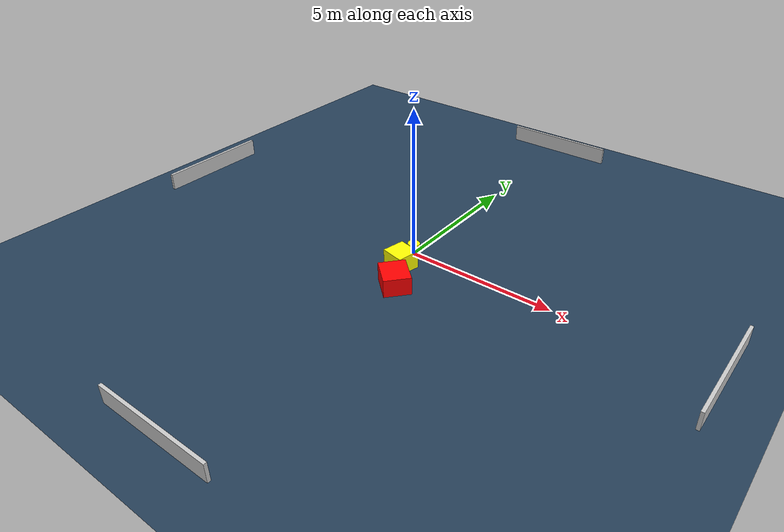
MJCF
<?xml version="1.0" ?>
<mujoco model="generated_environment">
  <option timestep="0.01" integrator="RK4" cone="elliptic"/>
  <default>
    <geom density="1"/>
  </default>
  <asset>
    <texture builtin="gradient" height="3072" name="skybox" rgb1="0.3 0.5 0.7" rgb2="0 0 0" type="skybox" width="512"/>
    <texture builtin="checker" height="300" name="groundplane" rgb1="0.2 0.3 0.4" rgb2="0.1 0.2 0.3" type="2d" width="300"/>
    <material name="groundplane" reflectance="0.2" texrepeat="5 5" texture="groundplane"/>
  </asset>
  <worldbody>
    <light dir="0 0 -1" directional="true" pos="0 0 1.5"/>
    <geom condim="3" friction="0.5 0.005 0.001" material="groundplane" name="floor" pos="0 0 0" size="0 0 0.05" type="plane"/>
    <body name="walls">
      <geom name="wall_1" condim="4" pos="-10.0 0.0 0.3" rgba="0.800000011920929 0.800000011920929 0.800000011920929 1.0" size="0.05 2.0 0.3" type="box"/>
      <geom name="wall_2" condim="4" pos="10.0 0.0 0.3" rgba="0.800000011920929 0.800000011920929 0.800000011920929 1.0" size="0.05 2.0 0.3" type="box"/>
      <geom name="wall_3" condim="4" pos="0.0 -10.0 0.3" rgba="0.800000011920929 0.800000011920929 0.800000011920929 1.0" size="2.0 0.05 0.3" type="box"/>
      <geom name="wall_4" condim="4" pos="0.0 10.0 0.3" rgba="0.800000011920929 0.800000011920929 0.800000011920929 1.0" size="2.0 0.05 0.3" type="box"/>
    </body>
    <body name="robot">
      <joint name="joint_x" type="slide" pos="0 0 0" axis="1 0 0"/>
      <joint name="joint_y" type="slide" pos="0 0 0" axis="0 1 0"/>
      <geom name="robot" type="cylinder" pos="0.0 0.0 0.2" size="0.2 0.2 0.0" mass="5.0" friction="1.0 0.005 0.0001" condim="4" rgba="1.0 1.0 0.0 1.0"/>
    </body>
    <body name="obstacle_1_movable">
      <geom name="obstacle_1_movable" condim="4" pos="0.12928846837979974 -0.8409885336665717 0.3" euler="0 0 78.46283032932305" friction="0.0 0.005 0.001" rgba="1.0 1.0 0.0 1.0" size="0.3819603377066859 0.3929487375922175 0.3" type="box" mass="0.1"/>
      <joint type="free"/>
    </body>
    <body name="obstacle_2_static">
      <geom name="obstacle_2_static" condim="4" pos="0.6553719897593568 -1.8232436116784663 0.3" euler="0 0 318.83722923713356" friction="0.0 0.005 0.001" rgba="1.0 0.0 0.0 1.0" size="0.505008917528631 0.4345052779027886 0.3" type="box"/>
    </body>
  </worldbody>
  <actuator>
    <motor name="actuator_x" joint="joint_x" gear="1" ctrlrange="-1 1"/>
    <motor name="actuator_y" joint="joint_y" gear="1" ctrlrange="-1 1"/>
  </actuator>
</mujoco>
